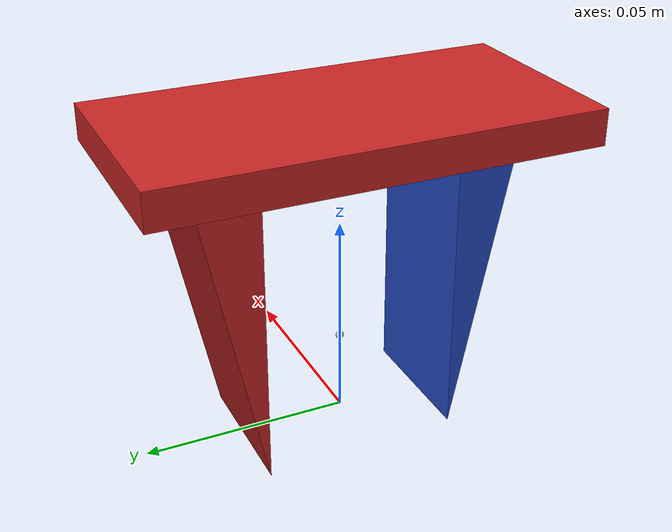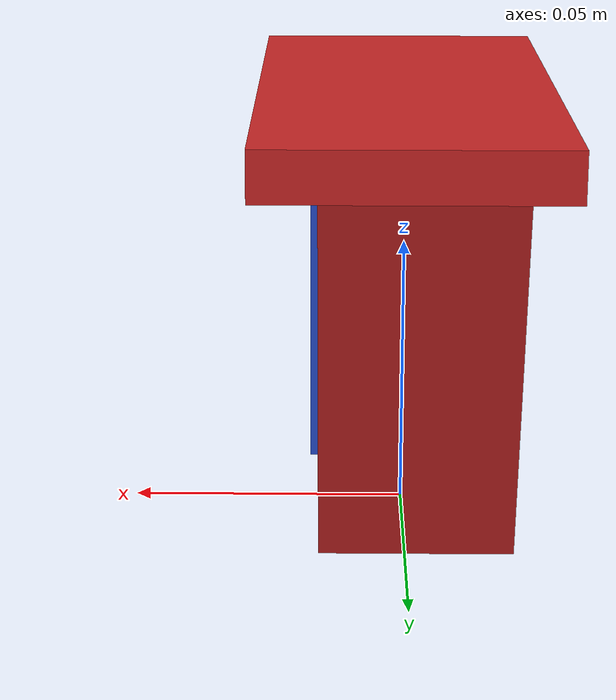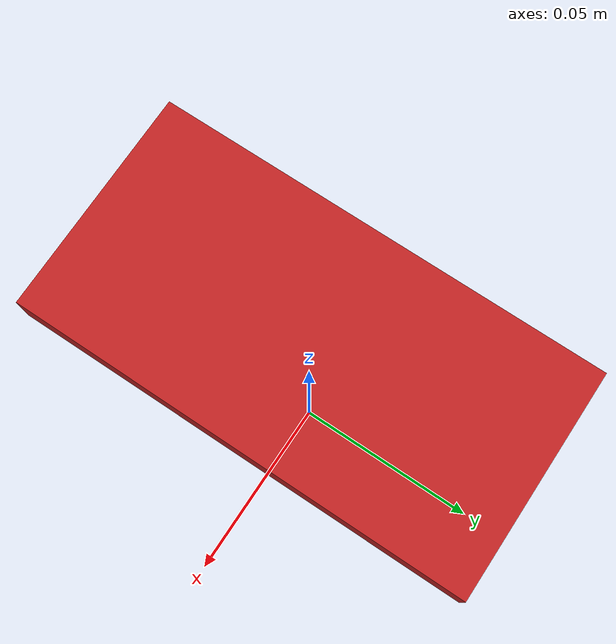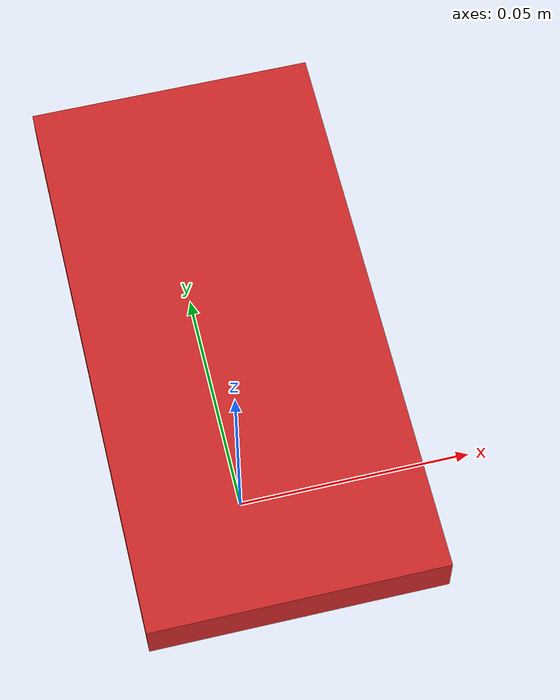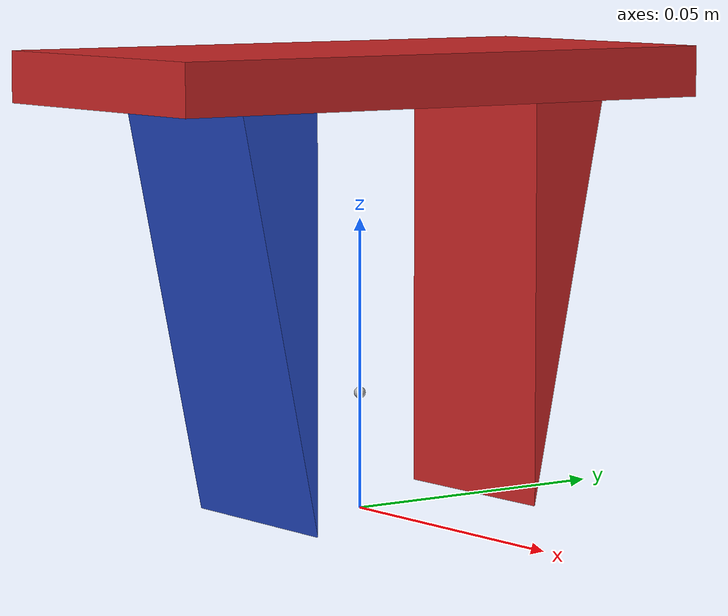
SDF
<?xml version="1.0" encoding="UTF-8"?>
<sdf version="1.4">
   <model name="gripper">
      <link name="plam">
         <pose>0.000000 0.000000 0.074561 0.000000 0.000000 0.000000</pose>
         <inertial>
            <mass>.1</mass>
            <inertia>
               <ixx>0.05</ixx>
               <ixy>0.0</ixy>
               <iyy>0.05</iyy>
               <ixz>0.0</ixz>
               <iyz>0.0</iyz>
               <izz>0.05</izz>
            </inertia>
         </inertial>
         <collision name="collision">
            <surface>
               <friction>
                  <ode>
                     <mu>100000.0</mu>
                     <mu2>100000.0</mu2>
                     <slip1>0.0</slip1>
                     <slip2>0.0</slip2>
                  </ode>
               </friction>
            </surface>
            <geometry>
               <box>
                  <size>0.052632 0.105263 0.008772</size>
               </box>
            </geometry>
         </collision>
         <visual name="visual">
            <geometry>
               <box>
                  <size>0.052632 0.105263 0.008772</size>
               </box>
            </geometry>
            <material>
               <script>
                  <uri>file://media/materials/scripts/gazebo.material</uri>
                  <name>Gazebo/Red</name>
               </script>
            </material>
         </visual>
      </link>
      <link name="right_finger">
         <pose>0.000000 0.029825 0.035088 0.000000 0.000000 0.000000</pose>
         <inertial>
            <mass>.1</mass>
            <inertia>
               <ixx>0.05</ixx>
               <ixy>0.0</ixy>
               <iyy>0.05</iyy>
               <ixz>0.0</ixz>
               <iyz>0.0</iyz>
               <izz>0.05</izz>
            </inertia>
         </inertial>
         <collision name="collision">
            <surface>
               <bounce>
                  <restitution_coefficient>0</restitution_coefficient>
                  <threshold>99999999</threshold>
               </bounce>
               <friction>
                  <ode>
                     <mu>100000.0</mu>
                     <mu2>100000.0</mu2>
                     <slip1>0.0</slip1>
                     <slip2>0.0</slip2>
                  </ode>
               </friction>
            </surface>
            <geometry>
               <mesh>
                  <scale>0.045614 0.035088 0.035088</scale>
                  <uri>/home/kevin/research/gazebo/Arm_Control3_ar6axis_connect_to_SystemGUI/model/gripper/right_finger.dae</uri>
               </mesh>
            </geometry>
         </collision>
         <visual name="visual">
            <material>
               <script>
                  <uri>file://media/materials/scripts/gazebo.material</uri>
                  <name>Gazebo/Red</name>
               </script>
            </material>
            <geometry>
               <mesh>
                  <scale>0.045614 0.035088 0.035088</scale>
                  <uri>/home/kevin/research/gazebo/Arm_Control3_ar6axis_connect_to_SystemGUI/model/gripper/right_finger.dae</uri>
               </mesh>
            </geometry>
         </visual>
      </link>
      <link name="left_finger">
         <pose>0.000000 -0.025439 0.035088 0.000000 0.000000 0.000000</pose>
         <inertial>
            <mass>.1</mass>
            <inertia>
               <ixx>0.05</ixx>
               <ixy>0.0</ixy>
               <iyy>0.05</iyy>
               <ixz>0.0</ixz>
               <iyz>0.0</iyz>
               <izz>0.05</izz>
            </inertia>
         </inertial>
         <collision name="collision">
            <surface>
               <bounce>
                  <restitution_coefficient>0</restitution_coefficient>
                  <threshold>99999999</threshold>
               </bounce>
               <friction>
                  <ode>
                     <mu>100000.0</mu>
                     <mu2>100000.0</mu2>
                     <slip1>0.0</slip1>
                     <slip2>0.0</slip2>
                  </ode>
               </friction>
            </surface>
            <geometry>
               <mesh>
                  <scale>0.045614 0.035088 0.035088</scale>
                  <uri>/home/kevin/research/gazebo/Arm_Control3_ar6axis_connect_to_SystemGUI/model/gripper/left_finger.dae</uri>
               </mesh>
            </geometry>
         </collision>
         <visual name="visual">
            <material>
               <script>
                  <uri>file://media/materials/scripts/gazebo.material</uri>
                  <name>Gazebo/Blue</name>
               </script>
            </material>
            <geometry>
               <mesh>
                  <scale>0.045614 0.035088 0.035088</scale>
                  <uri>/home/kevin/research/gazebo/Arm_Control3_ar6axis_connect_to_SystemGUI/model/gripper/left_finger.dae</uri>
               </mesh>
            </geometry>
         </visual>
      </link>
      <joint name="right_joint" type="prismatic">
         <pose>0.000000 0.000000 0.035088 0.000000 0.000000 0.000000</pose>
         <child>right_finger</child>
         <parent>plam</parent>
         <axis>
            <dynamics>
               <damping>5</damping>
               <friction>5</friction>
            </dynamics>
            <xyz>0 1 0</xyz>
            <dynamics>
               <damping>5</damping>
               <friction>5</friction>
            </dynamics>
            <limit>
               <lower>-0.0228</lower>
               <upper>0</upper>
            </limit>
         </axis>
      </joint>
      <joint name="left_joint" type="prismatic">
         <pose>0.000000 0.000000 0.035088 0.000000 0.000000 0.000000</pose>
         <child>left_finger</child>
         <parent>plam</parent>
         <axis>
            <dynamics>
               <damping>5</damping>
               <friction>5</friction>
            </dynamics>
            <xyz>0 1 0</xyz>
            <limit>
               <lower>-0.0085</lower>
               <upper>0.0208</upper>
            </limit>
         </axis>
      </joint>

      <joint name="glue" type="revolute">
			<axis>1 0 0</axis>
         <pose>0.000000 0.000000 0.0 0.000000 0.000000 0.000000</pose>
         <child>dummy_for_glue</child>
         <parent>palm</parent>
      </joint>

		<link name="dummy_for_glue">
         <pose>0.000000 0.0 0.02 0.000000 0.000000 0.000000</pose>
 			<inertial>
            <mass>.0001</mass>
         </inertial>
         <collision name="collision">
            <geometry>
               <sphere>
                  <radius>0.0001</radius>
               </sphere>
            </geometry>
         </collision>

         <visual name="visual">
            <geometry>
               <sphere>
                  <radius>0.001</radius>
               </sphere>
            </geometry>
         </visual>
      </link>

   </model>
</sdf>
